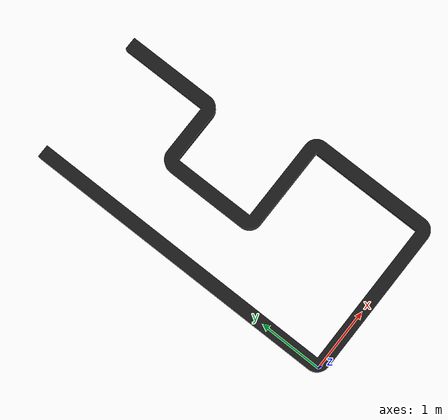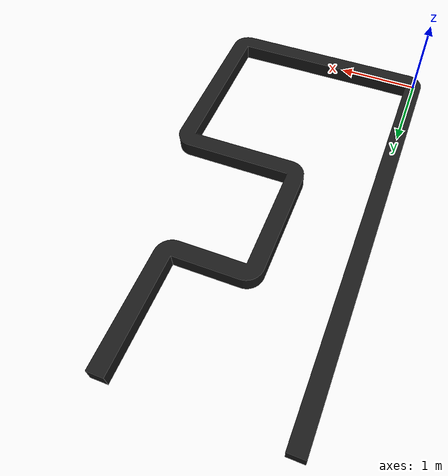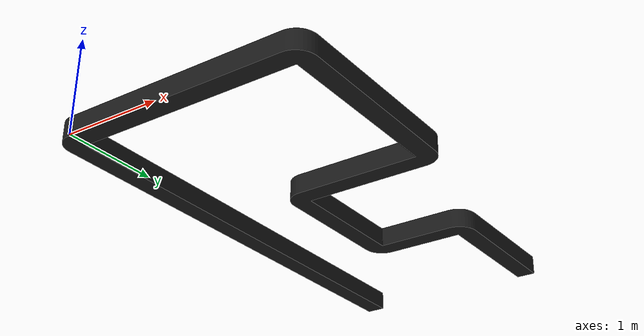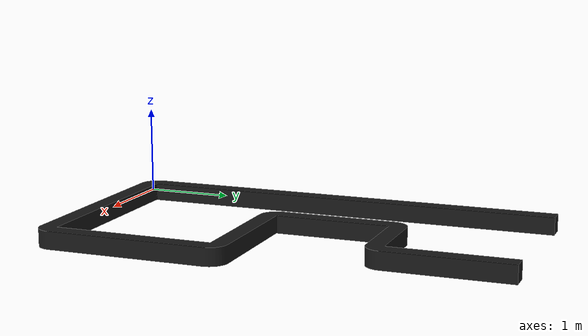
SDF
<?xml version="1.0" ?>
<sdf version="1.6">
  <model name="my_model">
    <static>true</static>
    <link name="link">
      <collision name="collision">
        <geometry>
          <mesh>
            <uri>model://teknofest_pipe/meshes/line.stl</uri>
            <scale>1 1 1</scale>
          </mesh>
        </geometry>
      </collision>
      <visual name="visual">
        <geometry>
          <mesh>
            <uri>model://teknofest_pipe/meshes/line.stl</uri>
            <scale>0.001 0.001 0.001</scale>
          </mesh>
        </geometry>
        <material>
          <ambient>0.1 0.1 0.1 1</ambient>
          <diffuse>0.1 0.1 0.1 1</diffuse>
          <specular>0.05 0.05 0.05 1</specular>
        </material>
      </visual>
      <inertial>
        <mass>1.0</mass>
        <inertia>
          <ixx>0.1</ixx>
          <ixy>0.0</ixy>
          <ixz>0.0</ixz>
          <iyy>0.1</iyy>
          <iyz>0.0</iyz>
          <izz>0.1</izz>
        </inertia>
      </inertial>
    </link>
  </model>
</sdf>
